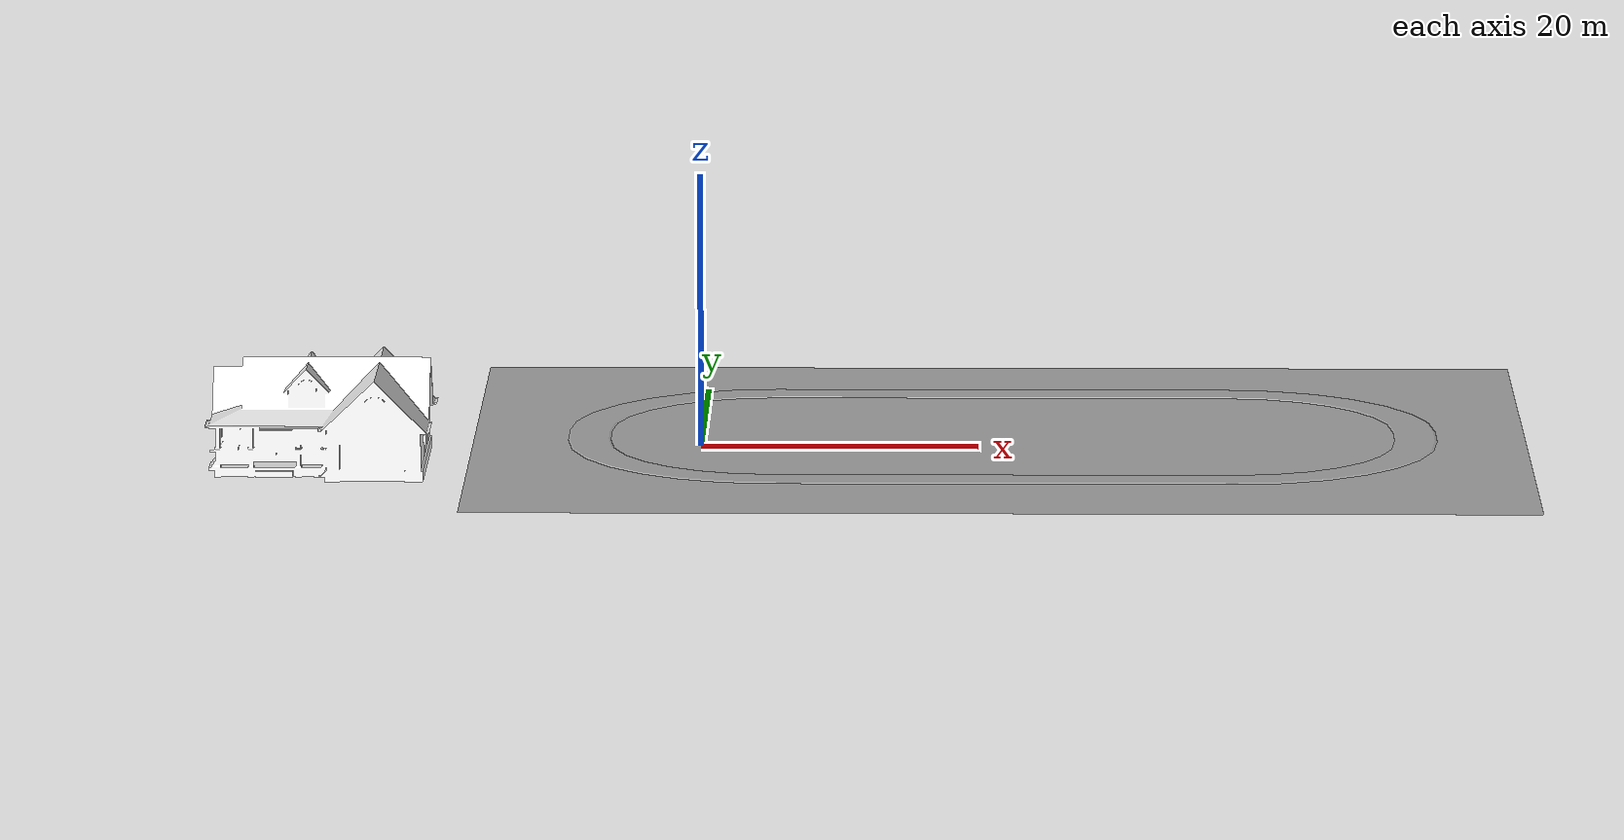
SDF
<?xml version='1.0'?>
<sdf version='1.7'>
  <model name='my'>
    <model name='my'>
      <model name='House 1'>
        <static>1</static>
        <link name='link'>
          <collision name='collision'>
            <geometry>
              <mesh>
                <uri>model://house_1/meshes/house_1.dae</uri>
                <scale>1.5 1.5 1.5</scale>
              </mesh>
            </geometry>
          </collision>
          <visual name='visual'>
            <geometry>
              <mesh>
                <uri>model://house_1/meshes/house_1.dae</uri>
                <scale>1.5 1.5 1.5</scale>
              </mesh>
            </geometry>
            <material>
              <script>
                <uri>model://house_1/materials/scripts</uri>
                <uri>model://house_1/materials/textures</uri>
                <name>House_1/Diffuse</name>
              </script>
              <shader type='normal_map_tangent_space'>
                <normal_map>House_1_Normal.png</normal_map>
              </shader>
            </material>
          </visual>
        </link>
        <pose>-27.0418 -4.46703 -0.333333 0 -0 0</pose>
      </model>
      <model name='aws_Ground_01'>
        <link name='body'>
          <pose>0 0 0 0 -0 0</pose>
          <self_collide>0</self_collide>
          <kinematic>0</kinematic>
          <gravity>1</gravity>
          <inertial>
            <mass>10000</mass>
            <pose>0 0 0 0 -0 0</pose>
            <inertia>
              <ixx>0</ixx>
              <ixy>0</ixy>
              <ixz>0</ixz>
              <iyy>0</iyy>
              <iyz>0</iyz>
              <izz>0</izz>
            </inertia>
          </inertial>
          <visual name='visual'>
            <geometry>
              <mesh>
                <uri>model://aws_robomaker_racetrack_Ground_01/meshes/aws_Ground_01_visual.DAE</uri>
                <scale>0.09 0.06 0.2</scale>
              </mesh>
            </geometry>
            <material>
              <shader type='pixel'>
                <normal_map>__default__</normal_map>
              </shader>
            </material>
            <pose>0 0 0 0 -0 0</pose>
            <cast_shadows>1</cast_shadows>
            <transparency>0</transparency>
            <meta>
              <layer>0</layer>
            </meta>
          </visual>
          <collision name='collision_0'>
            <laser_retro>0</laser_retro>
            <max_contacts>10</max_contacts>
            <pose>0 0 0 0 -0 0</pose>
            <geometry>
              <mesh>
                <uri>model://aws_robomaker_racetrack_Ground_01/meshes/aws_Ground_01_collision.DAE</uri>
                <scale>0.2 0.2 0.2</scale>
              </mesh>
            </geometry>
            <surface>
              <friction>
                <ode>
                  <mu>1</mu>
                  <mu2>1</mu2>
                  <fdir1>0 0 0</fdir1>
                  <slip1>0</slip1>
                  <slip2>0</slip2>
                </ode>
                <torsional>
                  <coefficient>1</coefficient>
                  <patch_radius>0</patch_radius>
                  <surface_radius>0</surface_radius>
                  <use_patch_radius>1</use_patch_radius>
                  <ode>
                    <slip>0</slip>
                  </ode>
                </torsional>
              </friction>
              <bounce>
                <restitution_coefficient>0</restitution_coefficient>
                <threshold>1e+06</threshold>
              </bounce>
              <contact>
                <collide_without_contact>0</collide_without_contact>
                <collide_without_contact_bitmask>1</collide_without_contact_bitmask>
                <collide_bitmask>65535</collide_bitmask>
                <ode>
                  <soft_cfm>0</soft_cfm>
                  <soft_erp>0.2</soft_erp>
                  <kp>1e+13</kp>
                  <kd>1</kd>
                  <max_vel>0.01</max_vel>
                  <min_depth>0</min_depth>
                </ode>
                <bullet>
                  <split_impulse>1</split_impulse>
                  <split_impulse_penetration_threshold>-0.01</split_impulse_penetration_threshold>
                  <soft_cfm>0</soft_cfm>
                  <soft_erp>0.2</soft_erp>
                  <kp>1e+13</kp>
                  <kd>1</kd>
                </bullet>
              </contact>
            </surface>
          </collision>
        </link>
        <static>1</static>
        <pose>21.5891 2.07704 0.166667 0 -0 0</pose>
      </model>
      <model name='aws_Track_05'>
        <link name='body'>
          <pose>0 0 0 0 -0 0</pose>
          <self_collide>0</self_collide>
          <kinematic>0</kinematic>
          <gravity>1</gravity>
          <inertial>
            <mass>1000</mass>
            <pose>0 0 0 0 -0 0</pose>
            <inertia>
              <ixx>1</ixx>
              <ixy>0</ixy>
              <ixz>0</ixz>
              <iyy>1</iyy>
              <iyz>0</iyz>
              <izz>1</izz>
            </inertia>
          </inertial>
          <visual name='visual'>
            <geometry>
              <mesh>
                <uri>model://aws_robomaker_racetrack_Track_05/meshes/aws_Track_05_visual.DAE</uri>
              </mesh>
            </geometry>
            <material>
              <shader type='pixel'>
                <normal_map>__default__</normal_map>
              </shader>
            </material>
            <pose>0 0 0 0 -0 0</pose>
            <cast_shadows>1</cast_shadows>
            <transparency>0</transparency>
            <meta>
              <layer>0</layer>
            </meta>
          </visual>
          <collision name='collision_0'>
            <laser_retro>0</laser_retro>
            <max_contacts>10</max_contacts>
            <pose>0 0 0 0 -0 0</pose>
            <geometry>
              <mesh>
                <uri>model://aws_robomaker_racetrack_Track_05/meshes/aws_Track_05_collision.DAE</uri>
                <scale>1 1 1</scale>
              </mesh>
            </geometry>
            <surface>
              <friction>
                <ode>
                  <mu>1</mu>
                  <mu2>1</mu2>
                  <fdir1>0 0 0</fdir1>
                  <slip1>0</slip1>
                  <slip2>0</slip2>
                </ode>
                <torsional>
                  <coefficient>1</coefficient>
                  <patch_radius>0</patch_radius>
                  <surface_radius>0</surface_radius>
                  <use_patch_radius>1</use_patch_radius>
                  <ode>
                    <slip>0</slip>
                  </ode>
                </torsional>
              </friction>
              <bounce>
                <restitution_coefficient>0</restitution_coefficient>
                <threshold>1e+06</threshold>
              </bounce>
              <contact>
                <collide_without_contact>0</collide_without_contact>
                <collide_without_contact_bitmask>1</collide_without_contact_bitmask>
                <collide_bitmask>1</collide_bitmask>
                <ode>
                  <soft_cfm>0</soft_cfm>
                  <soft_erp>0.2</soft_erp>
                  <kp>1e+13</kp>
                  <kd>1</kd>
                  <max_vel>0.01</max_vel>
                  <min_depth>0</min_depth>
                </ode>
                <bullet>
                  <split_impulse>1</split_impulse>
                  <split_impulse_penetration_threshold>-0.01</split_impulse_penetration_threshold>
                  <soft_cfm>0</soft_cfm>
                  <soft_erp>0.2</soft_erp>
                  <kp>1e+13</kp>
                  <kd>1</kd>
                </bullet>
              </contact>
            </surface>
          </collision>
        </link>
        <static>1</static>
        <pose>26.0428 2.90868 0.166667 0 -0 0</pose>
      </model>
      <static>0</static>
      <allow_auto_disable>1</allow_auto_disable>
      <pose>-3.5e-05 4e-06 0 0 -0 0</pose>
    </model>
    <static>0</static>
    <allow_auto_disable>1</allow_auto_disable>
  </model>
</sdf>
